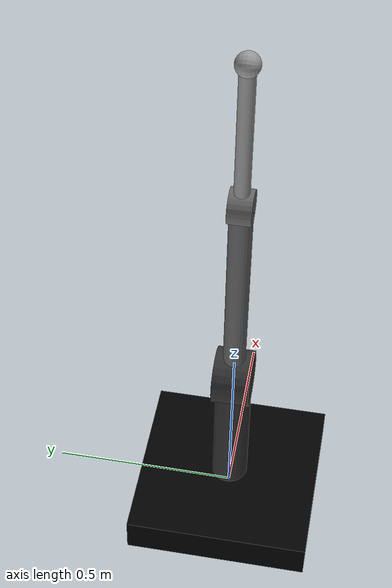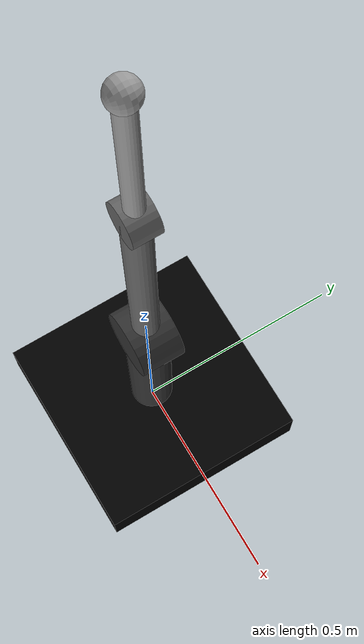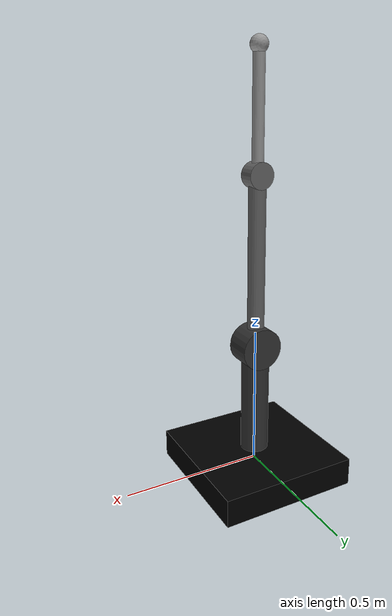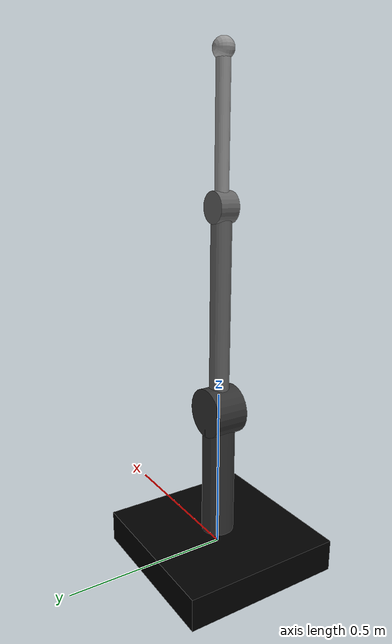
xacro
<?xml version="1.0"?>
<robot xmlns:xacro="http://www.ros.org/wiki/xacro" name="my_simple_manipulator">

    <xacro:property name="link1_length" value="0.4" />
    <xacro:property name="link2_length" value="0.6" />
    <xacro:property name="link3_length" value="0.4" />
    <xacro:property name="base_length" value="0.5" />
    <xacro:property name="link1_radius" value="0.05" />
    <xacro:property name="link2_radius" value="0.03" />
    <xacro:property name="link3_radius" value="0.02" />
    <xacro:property name="link1_mass" value="1.0" />
    <xacro:property name="link2_mass" value="0.6" />
    <xacro:property name="link3_mass" value="0.4" />
    <xacro:property name="base_mass" value="10.0" />
    <xacro:property name="ee_mass" value="0.2" />

    <!-- collision_shortening_factor -->
    <xacro:property name="csf" value="0.8" />

    <xacro:macro name="cylinder_inertia" params="mass length radius">
        <inertial>
            <mass value="${mass}" />
            <inertia ixx="${(mass/12)*(3*radius*radius + length*length)}"
                     iyy="${(mass/12)*(3*radius*radius + length*length)}"
                     iyz="0.0" ixy="0.0" ixz="0.0"
                     izz="${(mass/2)*(radius*radius)}" />
        </inertial>
    </xacro:macro>

    <xacro:macro name="cuboid_inertia" params="mass length breadth height">
        <inertial>
            <mass value="${mass}" />
            <inertia ixx="${(mass/12)*(breadth*breadth + height*height)}"
                     iyy="${(mass/12)*(height*height + length*length)}"
                     iyz="0.0" ixy="0.0" ixz="0.0"
                     izz="${(mass/12)*(breadth*breadth + length*length)}" />
        </inertial>
    </xacro:macro>

    <xacro:macro name="sphere_inertia" params="mass radius">
        <inertial>
            <mass value="${mass}" />
            <inertia ixx="${(mass*0.4)*(radius*radius)}"
                     iyy="${(mass*0.4)*(radius*radius)}"
                     iyz="0.0" ixy="0.0" ixz="0.0"
                     izz="${(mass*0.4)*(radius*radius)}" />
        </inertial>
    </xacro:macro>

    <material name="black">
        <color rgba="0.0 0.0 0.0 1.0"/>
    </material>
    <material name="grey">
        <color rgba="0.2 0.2 0.2 1.0"/>
    </material>
    <material name="light_grey">
        <color rgba="0.4 0.4 0.4 1.0"/>
    </material>
    <material name="lighter_grey">
        <color rgba="0.6 0.6 0.6 1.0"/>
    </material>

    <link name='base_link'>
        <visual>
            <geometry>
                <box size='0.01 0.01 0.01'/>
            </geometry>
            <origin xyz='0.0 0.0 0.0' rpy='0.0 0.0 0.0' />
        </visual>
    </link>

    <joint name='joint_base_link' type='fixed'>
        <origin xyz='0.0 0.0 0.0' rpy='0 0 0'/>
        <parent link='base_link'/>
        <child link='link0'/>
    </joint>

    <link name="link0">
        <visual>
            <geometry>
                <box size='${base_length} ${base_length} 0.1'/>
            </geometry>
            <origin xyz='0.0 0.0 0.0' rpy='0.0 0.0 0.0' />
            <material name="black"/>
        </visual>
        <collision>
            <geometry>
                <box size='${base_length} ${base_length} 0.1'/>
            </geometry>
            <origin xyz='0.0 0.0 0.0' rpy='0.0 0.0 0.0' />
        </collision>
        <xacro:cuboid_inertia mass="${base_mass}" length="${base_length}" breadth="${base_length}" height="0.1"/>
    </link>

    <joint name="joint1" type="revolute">
        <parent link="link0"/>
        <child link="link1"/>
        <origin xyz="0 0 0.05" rpy="0 0 0.0" />
        <axis xyz="0 0 1" />
        <limit effort="100" velocity="1.0" lower="-3.13" upper="3.13"/>
    </joint>

    <link name="link1">
        <visual>
            <geometry>
                <cylinder length="${link1_length}" radius="${link1_radius}"/>
            </geometry>
            <origin xyz='0.0 0.0 ${link1_length/2}' rpy='0.0 0.0 0.0' />
            <material name="grey"/>
        </visual>
        <visual>
            <geometry>
                <cylinder length="${link1_radius*2}" radius="${link1_radius*1.5}"/>
            </geometry>
            <origin xyz='0.0 0.0 ${link1_length}' rpy='1.57 0.0 0.0' />
            <material name="grey"/>
        </visual>
        <collision>
            <geometry>
                <cylinder length="${link1_length*csf}" radius="${link1_radius}"/>
            </geometry>
            <origin xyz='0.0 0.0 ${(link1_length/2)*csf}' rpy='0.0 0.0 0.0' />
        </collision>
        <xacro:cylinder_inertia mass="${link1_mass}" radius="${link1_radius}" length="${link1_length}" />
    </link>

    <joint name="joint2" type="revolute">
        <parent link="link1"/>
        <child link="link2"/>
        <origin xyz="0 0 ${link1_length}" rpy="1.57 -1.57 0.0" />
        <axis xyz="0 0 1" />
        <limit effort="100" velocity="1.0" lower="-2.13" upper="2.13"/>
    </joint>

    <link name="link2">
        <visual>
            <geometry>
                <cylinder length="${link2_length}" radius="${link2_radius}"/>
            </geometry>
            <origin xyz='${link2_length/2} 0.0 0.0' rpy='0.0 1.57 0.0' />
            <material name="light_grey"/>
        </visual>
        <visual>
            <geometry>
                <cylinder length="${link2_radius*2}" radius="${link2_radius*1.5}"/>
            </geometry>
            <origin xyz='${link2_length} 0.0 0.0' rpy='0.0 0.0 0.0' />
            <material name="light_grey"/>
        </visual>
        <collision>
            <geometry>
                <cylinder length="${link2_length*csf}" radius="${link2_radius}"/>
            </geometry>
            <origin xyz='${(link2_length/2)*csf} 0.0 0.0' rpy='0.0 1.57 0.0' />
        </collision>
        <xacro:cylinder_inertia mass="${link2_mass}" radius="${link2_radius}" length="${link2_length}" />
    </link>

    <joint name="joint3" type="revolute">
        <parent link="link2"/>
        <child link="link3"/>
        <origin xyz="${link2_length} 0.0 0.0" rpy="0 0 0.0" />
        <axis xyz="0 0 1" />
        <limit effort="100" velocity="1.0" lower="-2.00" upper="2.00"/>
    </joint>

    <link name="link3">
        <visual>
            <geometry>
                <cylinder length="${link3_length}" radius="${link3_radius}"/>
            </geometry>
            <origin xyz='${link3_length/2} 0.0 0.0' rpy='0.0 1.57 0.0' />
            <material name="lighter_grey"/>
        </visual>
        <collision>
            <geometry>
                <cylinder length="${link3_length*csf}" radius="${link3_radius}"/>
            </geometry>
            <origin xyz='${(link3_length/2)*csf} 0.0 0.0' rpy='0.0 1.57 0.0' />
        </collision>
        <xacro:cylinder_inertia mass="${link3_mass}" radius="${link3_radius}" length="${link3_length}" />
    </link>

    <joint name="joint_ee" type="fixed">
        <parent link="link3"/>
        <child link="end_effector"/>
        <origin xyz="0.4 0.0 0.0" rpy="0 0 0.0" />
        <axis xyz="0 0 1" />
    </joint>

    <link name="end_effector">
        <visual>
            <geometry>
                <sphere radius="0.03"/>
            </geometry>
            <origin xyz='0.0 0.0 0.0' rpy='0.0 0.0 0.0' />
            <material name="lighter_grey"/>
        </visual>
        <collision>
            <geometry>
                <sphere radius="0.03"/>
            </geometry>
            <origin xyz='0.0 0.0 0.0' rpy='0.0 0.0 0.0' />
        </collision>
        <xacro:sphere_inertia mass="${ee_mass}" radius="0.03" />
    </link>

    <transmission name="joint1_trans">
        <type>transmission_interface/SimpleTransmission</type>
        <actuator name="$joint1_motor">
            <hardwareInterface>hardware_interface/EffortJointInterface</hardwareInterface>
            <mechanicalReduction>1</mechanicalReduction>
        </actuator>
        <joint name="joint1">
            <hardwareInterface>hardware_interface/EffortJointInterface</hardwareInterface>
        </joint>
    </transmission>

    <transmission name="joint2_trans">
        <type>transmission_interface/SimpleTransmission</type>
        <actuator name="$joint2_motor">
            <hardwareInterface>hardware_interface/EffortJointInterface</hardwareInterface>
            <mechanicalReduction>1</mechanicalReduction>
        </actuator>
        <joint name="joint2">
            <hardwareInterface>hardware_interface/EffortJointInterface</hardwareInterface>
        </joint>
    </transmission>

    <transmission name="joint3_trans">
        <type>transmission_interface/SimpleTransmission</type>
        <actuator name="$joint3_motor">
            <hardwareInterface>hardware_interface/EffortJointInterface</hardwareInterface>
            <mechanicalReduction>1</mechanicalReduction>
        </actuator>
        <joint name="joint3">
            <hardwareInterface>hardware_interface/EffortJointInterface</hardwareInterface>
        </joint>
    </transmission>

    <!-- plugin for gazebo -->
    <gazebo>
        <plugin name="gazebo_ros_control" filename="libgazebo_ros_control.so">
            <robotNamespace>/</robotNamespace>
            <robotSimType>gazebo_ros_control/DefaultRobotHWSim</robotSimType>
            <legacyModeNS>true</legacyModeNS>
        </plugin>
    </gazebo>
</robot>
